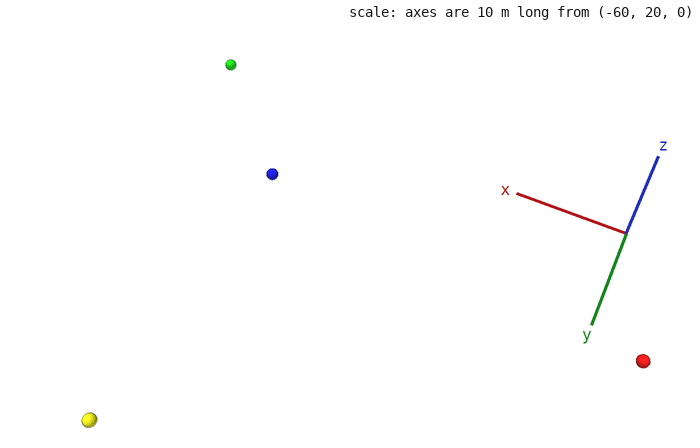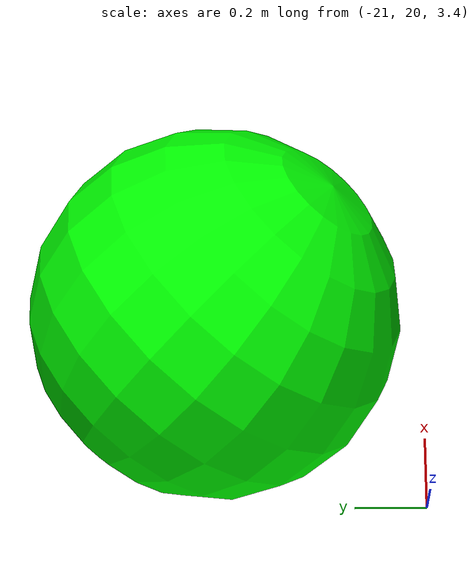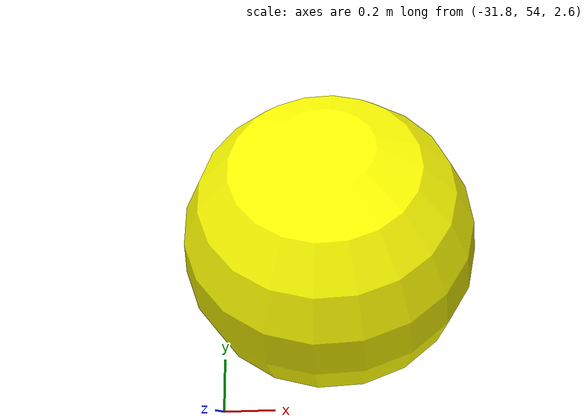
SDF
<sdf version="1.9">
 <world name="heightmap">
  <physics name="1ms" type="ignored">
   <dart>
    <collision_detector>bullet</collision_detector>
    <solver><solver_type>dantzig</solver_type></solver>
   </dart>
   <max_step_size>0.001</max_step_size>
   <real_time_factor>1</real_time_factor>
   <real_time_update_rate>1000</real_time_update_rate>
  </physics>
  <gravity>0 0 -9.8</gravity>
  <magnetic_field>6e-06 2.3e-05 -4.2e-05</magnetic_field>
  <atmosphere type="adiabatic"/>
  <scene><ambient>0.4 0.4 0.4 1</ambient><background>0.7 0.7 0.7 1</background><shadows>true</shadows></scene>
  <model name="sphere_red">
   <pose>-64.1949 33.0091 2.89297 1.0956 -1.48627 -1.48768</pose>
   <link name="sphere_link">
    <inertial>
     <inertia><ixx>3</ixx><ixy>0</ixy><ixz>0</ixz><iyy>3</iyy><iyz>0</iyz><izz>3</izz></inertia>
     <mass>3</mass>
    </inertial>
    <collision name="sphere_collision"><geometry><sphere><radius>0.5</radius></sphere></geometry></collision>
    <visual name="sphere_visual">
     <geometry><sphere><radius>0.5</radius></sphere></geometry>
     <material><ambient>1 0 0 1</ambient><diffuse>1 0 0 1</diffuse><specular>1 0 0 1</specular></material>
    </visual>
   </link>
   <static>false</static>
  </model>
  <model name="sphere_green">
   <pose>-20.5945 20.5865 3.91991 0.788667 0.595448 0.174189</pose>
   <link name="sphere_link">
    <inertial>
     <inertia><ixx>3</ixx><ixy>0</ixy><ixz>0</ixz><iyy>3</iyy><iyz>0</iyz><izz>3</izz></inertia>
     <mass>3</mass>
    </inertial>
    <collision name="sphere_collision"><geometry><sphere><radius>0.5</radius></sphere></geometry></collision>
    <visual name="sphere_visual">
     <geometry><sphere><radius>0.5</radius></sphere></geometry>
     <material><ambient>0 1 0 1</ambient><diffuse>0 1 0 1</diffuse><specular>0 1 0 1</specular></material>
    </visual>
   </link>
   <static>false</static>
  </model>
  <model name="sphere_blue">
   <pose>-30.9468 30.0098 3.13857 -3.07734 -1.24412 3.08021</pose>
   <link name="sphere_link">
    <inertial>
     <inertia><ixx>3</ixx><ixy>0</ixy><ixz>0</ixz><iyy>3</iyy><iyz>0</iyz><izz>3</izz></inertia>
     <mass>3</mass>
    </inertial>
    <collision name="sphere_collision"><geometry><sphere><radius>0.5</radius></sphere></geometry></collision>
    <visual name="sphere_visual">
     <geometry><sphere><radius>0.5</radius></sphere></geometry>
     <material><ambient>0 0 1 1</ambient><diffuse>0 0 1 1</diffuse><specular>0 0 1 1</specular></material>
    </visual>
   </link>
   <static>false</static>
  </model>
  <model name="sphere_yellow">
   <pose>-31.3765 54.5554 3.03095 -0.336875 0.041667 0.201367</pose>
   <link name="sphere_link">
    <inertial>
     <inertia><ixx>3</ixx><ixy>0</ixy><ixz>0</ixz><iyy>3</iyy><iyz>0</iyz><izz>3</izz></inertia>
     <mass>3</mass>
    </inertial>
    <collision name="sphere_collision"><geometry><sphere><radius>0.5</radius></sphere></geometry></collision>
    <visual name="sphere_visual">
     <geometry><sphere><radius>0.5</radius></sphere></geometry>
     <material><ambient>1 1 0 1</ambient><diffuse>1 1 0 1</diffuse><specular>1 1 0 1</specular></material>
    </visual>
   </link>
   <static>false</static>
  </model>
  <light name="sun" type="directional">
   <pose>0 0 10 0 -0 0</pose>
   <intensity>1</intensity>
   <direction>-0.5 0.1 -0.9</direction>
   <diffuse>0.8 0.8 0.8 1</diffuse>
   <specular>0.2 0.2 0.2 1</specular>
   <attenuation>
    <range>1000</range>
    <linear>0.01</linear>
    <constant>0.90000000000000002</constant>
    <quadratic>0.001</quadratic>
   </attenuation>
   <spot><inner_angle>0</inner_angle><outer_angle>0</outer_angle><falloff>0</falloff></spot>
  </light>
 </world>
</sdf>
